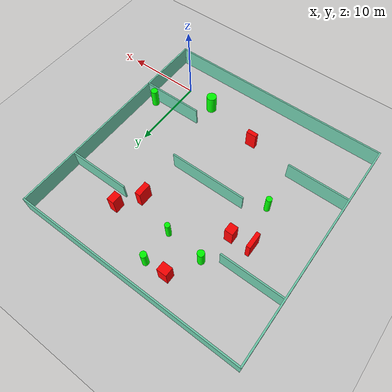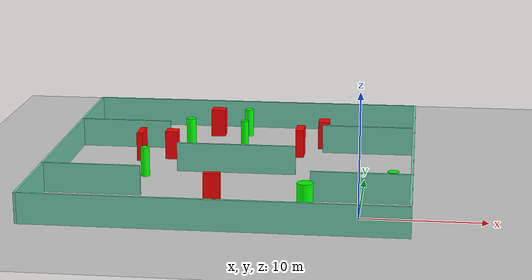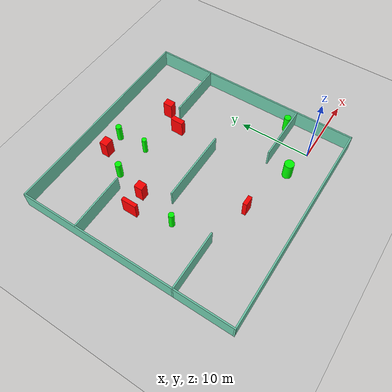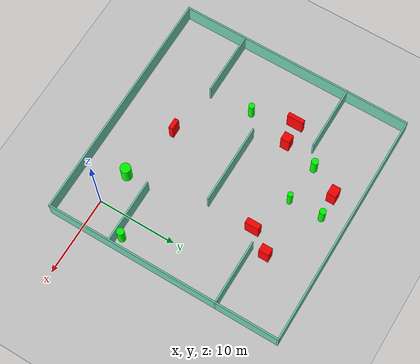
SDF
<sdf version="1.7">
 <world name="default">
  <light name="sun" type="directional">
   <pose>0 0 10 0 -0 0</pose>
   <diffuse>0.8 0.8 0.8 1</diffuse>
   <specular>0.2 0.2 0.2 1</specular>
   <attenuation>
    <range>1000</range>
    <constant>0.9</constant>
    <linear>0.01</linear>
    <quadratic>0.001</quadratic>
   </attenuation>
   <direction>-0.5 0.1 -0.9</direction>
   <spot><inner_angle>0</inner_angle><outer_angle>0</outer_angle><falloff>0</falloff></spot>
  </light>
  <model name="ground_plane">
   <static>1</static>
   <link name="link">
    <collision name="collision">
     <geometry><plane><normal>0 0 1</normal><size>100 100</size></plane></geometry>
     <surface>
      <contact><collide_bitmask>65535</collide_bitmask></contact>
      <friction><ode><mu>100</mu><mu2>50</mu2></ode></friction>
     </surface>
    </collision>
    <visual name="visual">
     <cast_shadows>0</cast_shadows>
     <geometry><plane><normal>0 0 1</normal><size>100 100</size></plane></geometry>
     <material>
      <script><uri>file://media/materials/scripts/gazebo.material</uri><name>Gazebo/Grey</name></script>
     </material>
    </visual>
   </link>
  </model>
  <gravity>0 0 -9.8</gravity>
  <magnetic_field>6e-06 2.3e-05 -4.2e-05</magnetic_field>
  <atmosphere type="adiabatic"/>
  <physics type="ode">
   <max_step_size>0.001</max_step_size>
   <real_time_factor>1</real_time_factor>
   <real_time_update_rate>1000</real_time_update_rate>
  </physics>
  <scene><ambient>0.4 0.4 0.4 1</ambient><background>0.7 0.7 0.7 1</background><shadows>1</shadows></scene>
  <spherical_coordinates>
   <surface_model>EARTH_WGS84</surface_model>
   <latitude_deg>0</latitude_deg>
   <longitude_deg>0</longitude_deg>
   <elevation>0</elevation>
   <heading_deg>0</heading_deg>
  </spherical_coordinates>
  <model name="my_base_walls">
   <link name="Wall_10">
    <collision name="Wall_10_Collision">
     <geometry><box><size>8.2 0.2 2.5</size></box></geometry>
     <pose>0 0 1.25 0 -0 0</pose>
    </collision>
    <visual name="Wall_10_Visual">
     <pose>0 0 1.25 0 -0 0</pose>
     <geometry><box><size>8.2 0.2 2.5</size></box></geometry>
     <material>
      <script><uri>file://media/materials/scripts/gazebo.material</uri><name>Gazebo/Grey</name></script>
      <ambient>0.435294 0.796078 0.67451 1</ambient>
     </material>
     <meta><layer>0</layer></meta>
    </visual>
    <pose>-11 -7 0 0 -0 0</pose>
   </link>
   <link name="Wall_12">
    <collision name="Wall_12_Collision">
     <geometry><box><size>8.2 0.2 2.5</size></box></geometry>
     <pose>0 0 1.25 0 -0 0</pose>
    </collision>
    <visual name="Wall_12_Visual">
     <pose>0 0 1.25 0 -0 0</pose>
     <geometry><box><size>8.2 0.2 2.5</size></box></geometry>
     <material>
      <script><uri>file://media/materials/scripts/gazebo.material</uri><name>Gazebo/Grey</name></script>
      <ambient>0.435294 0.796078 0.67451 1</ambient>
     </material>
     <meta><layer>0</layer></meta>
    </visual>
    <pose>-11 7 0 0 -0 0</pose>
   </link>
   <link name="Wall_14">
    <collision name="Wall_14_Collision">
     <geometry><box><size>8.2 0.2 2.5</size></box></geometry>
     <pose>0 0 1.25 0 -0 0</pose>
    </collision>
    <visual name="Wall_14_Visual">
     <pose>0 0 1.25 0 -0 0</pose>
     <geometry><box><size>8.2 0.2 2.5</size></box></geometry>
     <material>
      <script><uri>file://media/materials/scripts/gazebo.material</uri><name>Gazebo/Grey</name></script>
      <ambient>0.435294 0.796078 0.67451 1</ambient>
     </material>
     <meta><layer>0</layer></meta>
    </visual>
    <pose>11 7 0 0 -0 3.14159</pose>
   </link>
   <link name="Wall_16">
    <collision name="Wall_16_Collision">
     <geometry><box><size>10.2 0.2 2.5</size></box></geometry>
     <pose>0 0 1.25 0 -0 0</pose>
    </collision>
    <visual name="Wall_16_Visual">
     <pose>0 0 1.25 0 -0 0</pose>
     <geometry><box><size>10.2 0.2 2.5</size></box></geometry>
     <material>
      <script><uri>file://media/materials/scripts/gazebo.material</uri><name>Gazebo/Grey</name></script>
      <ambient>0.435294 0.796078 0.67451 1</ambient>
     </material>
     <meta><layer>0</layer></meta>
    </visual>
    <pose>0 0 0 0 -0 3.14159</pose>
   </link>
   <link name="Wall_2">
    <collision name="Wall_2_Collision">
     <geometry><box><size>30.2 0.2 2.5</size></box></geometry>
     <pose>0 0 1.25 0 -0 0</pose>
    </collision>
    <visual name="Wall_2_Visual">
     <pose>0 0 1.25 0 -0 0</pose>
     <geometry><box><size>30.2 0.2 2.5</size></box></geometry>
     <material>
      <script><uri>file://media/materials/scripts/gazebo.material</uri><name>Gazebo/Grey</name></script>
      <ambient>0.435294 0.796078 0.67451 1</ambient>
     </material>
     <meta><layer>0</layer></meta>
    </visual>
    <pose>0 -15 0 0 -0 3.14159</pose>
   </link>
   <link name="Wall_3">
    <collision name="Wall_3_Collision">
     <geometry><box><size>30.2 0.2 2.5</size></box></geometry>
     <pose>0 0 1.25 0 -0 0</pose>
    </collision>
    <visual name="Wall_3_Visual">
     <pose>0 0 1.25 0 -0 0</pose>
     <geometry><box><size>30.2 0.2 2.5</size></box></geometry>
     <material>
      <script><uri>file://media/materials/scripts/gazebo.material</uri><name>Gazebo/Grey</name></script>
      <ambient>0.435294 0.796078 0.67451 1</ambient>
     </material>
     <meta><layer>0</layer></meta>
    </visual>
    <pose>-15 0 0 0 -0 1.5708</pose>
   </link>
   <link name="Wall_4">
    <collision name="Wall_4_Collision">
     <geometry><box><size>30.2 0.2 2.5</size></box></geometry>
     <pose>0 0 1.25 0 -0 0</pose>
    </collision>
    <visual name="Wall_4_Visual">
     <pose>0 0 1.25 0 -0 0</pose>
     <geometry><box><size>30.2 0.2 2.5</size></box></geometry>
     <material>
      <script><uri>file://media/materials/scripts/gazebo.material</uri><name>Gazebo/Grey</name></script>
      <ambient>0.435294 0.796078 0.67451 1</ambient>
     </material>
     <meta><layer>0</layer></meta>
    </visual>
    <pose>0 15 0 0 -0 0</pose>
   </link>
   <link name="Wall_6">
    <collision name="Wall_6_Collision">
     <geometry><box><size>30.2 0.2 2.5</size></box></geometry>
     <pose>0 0 1.25 0 -0 0</pose>
    </collision>
    <visual name="Wall_6_Visual">
     <pose>0 0 1.25 0 -0 0</pose>
     <geometry><box><size>30.2 0.2 2.5</size></box></geometry>
     <material>
      <script><uri>file://media/materials/scripts/gazebo.material</uri><name>Gazebo/Grey</name></script>
      <ambient>0.435294 0.796078 0.67451 1</ambient>
     </material>
     <meta><layer>0</layer></meta>
    </visual>
    <pose>15 0 0 0 -0 1.5708</pose>
   </link>
   <link name="Wall_8">
    <collision name="Wall_8_Collision">
     <geometry><box><size>8.2 0.2 2.5</size></box></geometry>
     <pose>0 0 1.25 0 -0 0</pose>
    </collision>
    <visual name="Wall_8_Visual">
     <pose>0 0 1.25 0 -0 0</pose>
     <geometry><box><size>8.2 0.2 2.5</size></box></geometry>
     <material>
      <script><uri>file://media/materials/scripts/gazebo.material</uri><name>Gazebo/Grey</name></script>
      <ambient>0.435294 0.796078 0.67451 1</ambient>
     </material>
     <meta><layer>0</layer></meta>
    </visual>
    <pose>11 -7 0 0 -0 3.14159</pose>
   </link>
   <static>1</static>
   <pose>-11 11 0 0 -0 0</pose>
  </model>
  <model name="cylinder1">
   <static>1</static>
   <link name="link">
    <inertial>
     <mass>1</mass>
     <inertia><ixx>0.5</ixx><ixy>0</ixy><ixz>0</ixz><iyy>0.5</iyy><iyz>0</iyz><izz>1</izz></inertia>
    </inertial>
    <collision name="collision">
     <geometry><cylinder><radius>0.652044663812367</radius><length>2.5</length></cylinder></geometry>
    </collision>
    <visual name="visual">
     <geometry><cylinder><radius>0.652044663812367</radius><length>2.5</length></cylinder></geometry>
     <material>
      <ambient>0 1 0 1</ambient>
      <diffuse>0 1 0 1</diffuse>
      <specular>0.1 0.1 0.1 1</specular>
      <emissive>0 0 0 0</emissive>
     </material>
    </visual>
   </link>
   <pose>-4.233895813135836 0.899229065722301 1.25 0 0 0</pose>
  </model>
  <model name="cylinder2">
   <static>1</static>
   <link name="link">
    <inertial>
     <mass>1</mass>
     <inertia><ixx>0.5</ixx><ixy>0</ixy><ixz>0</ixz><iyy>0.5</iyy><iyz>0</iyz><izz>1</izz></inertia>
    </inertial>
    <collision name="collision">
     <geometry><cylinder><radius>0.46343952927593207</radius><length>2.5</length></cylinder></geometry>
    </collision>
    <visual name="visual">
     <geometry><cylinder><radius>0.46343952927593207</radius><length>2.5</length></cylinder></geometry>
     <material>
      <ambient>0 1 0 1</ambient>
      <diffuse>0 1 0 1</diffuse>
      <specular>0.1 0.1 0.1 1</specular>
      <emissive>0 0 0 0</emissive>
     </material>
    </visual>
   </link>
   <pose>2.5198571439602233 4.6224333556305295 1.25 0 0 0</pose>
  </model>
  <model name="cylinder3">
   <static>1</static>
   <link name="link">
    <inertial>
     <mass>1</mass>
     <inertia><ixx>0.5</ixx><ixy>0</ixy><ixz>0</ixz><iyy>0.5</iyy><iyz>0</iyz><izz>1</izz></inertia>
    </inertial>
    <collision name="collision">
     <geometry><cylinder><radius>0.33696322519039384</radius><length>2.5</length></cylinder></geometry>
    </collision>
    <visual name="visual">
     <geometry><cylinder><radius>0.33696322519039384</radius><length>2.5</length></cylinder></geometry>
     <material>
      <ambient>0 1 0 1</ambient>
      <diffuse>0 1 0 1</diffuse>
      <specular>0.1 0.1 0.1 1</specular>
      <emissive>0 0 0 0</emissive>
     </material>
    </visual>
   </link>
   <pose>-11.236689911118301 18.78308035097437 1.25 0 0 0</pose>
  </model>
  <model name="cylinder4">
   <static>1</static>
   <link name="link">
    <inertial>
     <mass>1</mass>
     <inertia><ixx>0.5</ixx><ixy>0</ixy><ixz>0</ixz><iyy>0.5</iyy><iyz>0</iyz><izz>1</izz></inertia>
    </inertial>
    <collision name="collision">
     <geometry><cylinder><radius>0.434215829771346</radius><length>2.5</length></cylinder></geometry>
    </collision>
    <visual name="visual">
     <geometry><cylinder><radius>0.434215829771346</radius><length>2.5</length></cylinder></geometry>
     <material>
      <ambient>0 1 0 1</ambient>
      <diffuse>0 1 0 1</diffuse>
      <specular>0.1 0.1 0.1 1</specular>
      <emissive>0 0 0 0</emissive>
     </material>
    </visual>
   </link>
   <pose>-16.20040851302918 19.205111146584763 1.25 0 0 0</pose>
  </model>
  <model name="cylinder5">
   <static>1</static>
   <link name="link">
    <inertial>
     <mass>1</mass>
     <inertia><ixx>0.5</ixx><ixy>0</ixy><ixz>0</ixz><iyy>0.5</iyy><iyz>0</iyz><izz>1</izz></inertia>
    </inertial>
    <collision name="collision">
     <geometry><cylinder><radius>0.3742545131189349</radius><length>2.5</length></cylinder></geometry>
    </collision>
    <visual name="visual">
     <geometry><cylinder><radius>0.3742545131189349</radius><length>2.5</length></cylinder></geometry>
     <material>
      <ambient>0 1 0 1</ambient>
      <diffuse>0 1 0 1</diffuse>
      <specular>0.1 0.1 0.1 1</specular>
      <emissive>0 0 0 0</emissive>
     </material>
    </visual>
   </link>
   <pose>-18.553474718076444 9.32495994901756 1.25 0 0 0</pose>
  </model>
  <model name="cylinder6">
   <static>1</static>
   <link name="link">
    <inertial>
     <mass>1</mass>
     <inertia><ixx>0.5</ixx><ixy>0</ixy><ixz>0</ixz><iyy>0.5</iyy><iyz>0</iyz><izz>1</izz></inertia>
    </inertial>
    <collision name="collision">
     <geometry><cylinder><radius>0.4048889680822763</radius><length>2.5</length></cylinder></geometry>
    </collision>
    <visual name="visual">
     <geometry><cylinder><radius>0.4048889680822763</radius><length>2.5</length></cylinder></geometry>
     <material>
      <ambient>0 1 0 1</ambient>
      <diffuse>0 1 0 1</diffuse>
      <specular>0.1 0.1 0.1 1</specular>
      <emissive>0 0 0 0</emissive>
     </material>
    </visual>
   </link>
   <pose>-11.336839116147006 22.970825049496682 1.25 0 0 0</pose>
  </model>
  <model name="box1">
   <static>1</static>
   <link name="link">
    <inertial>
     <mass>1</mass>
     <inertia><ixx>0.083</ixx><ixy>0</ixy><ixz>0</ixz><iyy>0.083</iyy><iyz>0</iyz><izz>0.083</izz></inertia>
    </inertial>
    <collision name="collision">
     <geometry><box><size>1.2819543434779175 1.1274940039365384 2.5</size></box></geometry>
    </collision>
    <visual name="visual">
     <geometry><box><size>1.2819543434779175 1.1274940039365384 2.5</size></box></geometry>
     <material>
      <ambient>1 0 0 1</ambient>
      <diffuse>1 0 0 1</diffuse>
      <specular>0.1 0.1 0.1 1</specular>
      <emissive>0 0 0 0</emissive>
     </material>
    </visual>
    <sensor name="my_contact" type="contact">
     <contact><collision>box_collision</collision><topic>__default_topic__</topic></contact>
    </sensor>
   </link>
   <pose>-14.173160025501442 22.838575261228957 1.25 0 0 0</pose>
  </model>
  <model name="box2">
   <static>1</static>
   <link name="link">
    <inertial>
     <mass>1</mass>
     <inertia><ixx>0.083</ixx><ixy>0</ixy><ixz>0</ixz><iyy>0.083</iyy><iyz>0</iyz><izz>0.083</izz></inertia>
    </inertial>
    <collision name="collision">
     <geometry><box><size>0.5211569317806861 2.093461768723609 2.5</size></box></geometry>
    </collision>
    <visual name="visual">
     <geometry><box><size>0.5211569317806861 2.093461768723609 2.5</size></box></geometry>
     <material>
      <ambient>1 0 0 1</ambient>
      <diffuse>1 0 0 1</diffuse>
      <specular>0.1 0.1 0.1 1</specular>
      <emissive>0 0 0 0</emissive>
     </material>
    </visual>
    <sensor name="my_contact" type="contact">
     <contact><collision>box_collision</collision><topic>__default_topic__</topic></contact>
    </sensor>
   </link>
   <pose>-19.878188462241305 14.599807197570069 1.25 0 0 0</pose>
  </model>
  <model name="box3">
   <static>1</static>
   <link name="link">
    <inertial>
     <mass>1</mass>
     <inertia><ixx>0.083</ixx><ixy>0</ixy><ixz>0</ixz><iyy>0.083</iyy><iyz>0</iyz><izz>0.083</izz></inertia>
    </inertial>
    <collision name="collision">
     <geometry><box><size>1.071745175689703 1.151845175416443 2.5</size></box></geometry>
    </collision>
    <visual name="visual">
     <geometry><box><size>1.071745175689703 1.151845175416443 2.5</size></box></geometry>
     <material>
      <ambient>1 0 0 1</ambient>
      <diffuse>1 0 0 1</diffuse>
      <specular>0.1 0.1 0.1 1</specular>
      <emissive>0 0 0 0</emissive>
     </material>
    </visual>
    <sensor name="my_contact" type="contact">
     <contact><collision>box_collision</collision><topic>__default_topic__</topic></contact>
    </sensor>
   </link>
   <pose>-17.203480809244155 14.931091197827978 1.25 0 0 0</pose>
  </model>
  <model name="box4">
   <static>1</static>
   <link name="link">
    <inertial>
     <mass>1</mass>
     <inertia><ixx>0.083</ixx><ixy>0</ixy><ixz>0</ixz><iyy>0.083</iyy><iyz>0</iyz><izz>0.083</izz></inertia>
    </inertial>
    <collision name="collision">
     <geometry><box><size>0.7334052298180485 1.7766810358864218 2.5</size></box></geometry>
    </collision>
    <visual name="visual">
     <geometry><box><size>0.7334052298180485 1.7766810358864218 2.5</size></box></geometry>
     <material>
      <ambient>1 0 0 1</ambient>
      <diffuse>1 0 0 1</diffuse>
      <specular>0.1 0.1 0.1 1</specular>
      <emissive>0 0 0 0</emissive>
     </material>
    </visual>
    <sensor name="my_contact" type="contact">
     <contact><collision>box_collision</collision><topic>__default_topic__</topic></contact>
    </sensor>
   </link>
   <pose>-6.012445489735612 16.946461260271384 1.25 0 0 0</pose>
  </model>
  <model name="box5">
   <static>1</static>
   <link name="link">
    <inertial>
     <mass>1</mass>
     <inertia><ixx>0.083</ixx><ixy>0</ixy><ixz>0</ixz><iyy>0.083</iyy><iyz>0</iyz><izz>0.083</izz></inertia>
    </inertial>
    <collision name="collision">
     <geometry><box><size>0.9730555910223169 1.29982924576731 2.5</size></box></geometry>
    </collision>
    <visual name="visual">
     <geometry><box><size>0.9730555910223169 1.29982924576731 2.5</size></box></geometry>
     <material>
      <ambient>1 0 0 1</ambient>
      <diffuse>1 0 0 1</diffuse>
      <specular>0.1 0.1 0.1 1</specular>
      <emissive>0 0 0 0</emissive>
     </material>
    </visual>
    <sensor name="my_contact" type="contact">
     <contact><collision>box_collision</collision><topic>__default_topic__</topic></contact>
    </sensor>
   </link>
   <pose>-4.091272913448069 19.694816871813906 1.25 0 0 0</pose>
  </model>
  <model name="box6">
   <static>1</static>
   <link name="link">
    <inertial>
     <mass>1</mass>
     <inertia><ixx>0.083</ixx><ixy>0</ixy><ixz>0</ixz><iyy>0.083</iyy><iyz>0</iyz><izz>0.083</izz></inertia>
    </inertial>
    <collision name="collision">
     <geometry><box><size>1.3627354136588645 0.5598676740353834 2.5</size></box></geometry>
    </collision>
    <visual name="visual">
     <geometry><box><size>1.3627354136588645 0.5598676740353834 2.5</size></box></geometry>
     <material>
      <ambient>1 0 0 1</ambient>
      <diffuse>1 0 0 1</diffuse>
      <specular>0.1 0.1 0.1 1</specular>
      <emissive>0 0 0 0</emissive>
     </material>
    </visual>
    <sensor name="my_contact" type="contact">
     <contact><collision>box_collision</collision><topic>__default_topic__</topic></contact>
    </sensor>
   </link>
   <pose>-11.847827865535326 2.680268553644204 1.25 0 0 0</pose>
  </model>
 </world>
</sdf>
